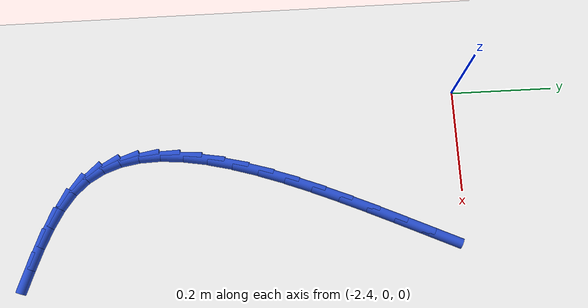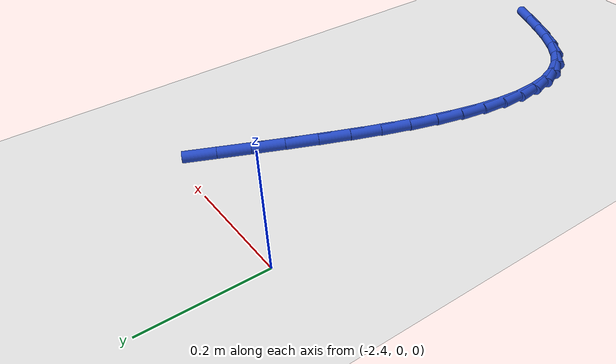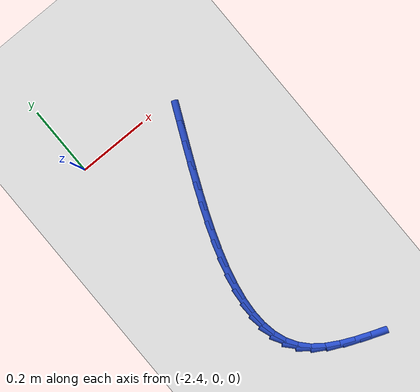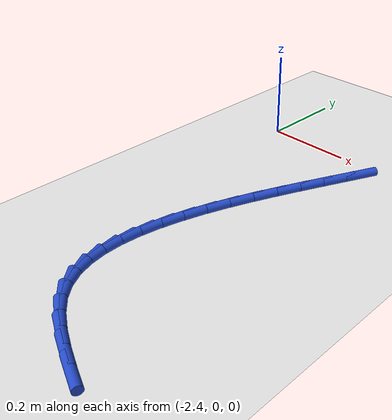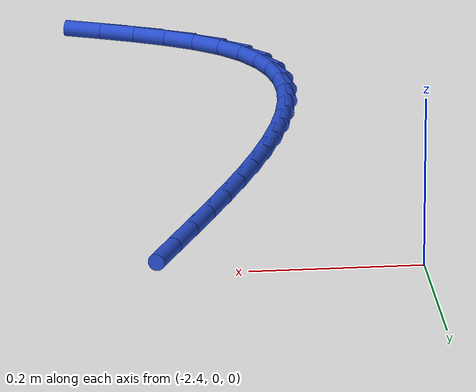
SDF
<sdf version="1.6">
 <world name="default">
  <model name="ground_plane">
   <static>1</static>
   <link name="link">
    <collision name="collision">
     <geometry><plane><normal>0 0 1</normal><size>100 100</size></plane></geometry>
     <surface><friction><ode><mu>100</mu><mu2>50</mu2></ode></friction></surface>
    </collision>
    <visual name="visual">
     <cast_shadows>0</cast_shadows>
     <geometry><plane><normal>0 0 1</normal><size>100 100</size></plane></geometry>
     <material>
      <script><uri>file://media/materials/scripts/gazebo.material</uri><name>Gazebo/WhiteGlow</name></script>
     </material>
    </visual>
   </link>
  </model>
  <model name="line">
   <link name="link_78">
    <pose>-2.1132337946085613 -0.04849310016206671 0.01 0 1.57 1.1350718296241256</pose>
    <collision name="collision">
     <geometry><cylinder><radius>0.01</radius><length>0.08</length></cylinder></geometry>
    </collision>
    <visual name="visual">
     <material>
      <script><name>Gazebo/Blue</name><uri>file://media/materials/scripts/gazebo.material</uri></script>
     </material>
     <geometry><cylinder><radius>0.01</radius><length>0.08</length></cylinder></geometry>
    </visual>
   </link>
   <link name="link_79">
    <pose>-2.136836326882205 -0.09918932072881387 0.01 0 1.57 1.137026792418814</pose>
    <collision name="collision">
     <geometry><cylinder><radius>0.01</radius><length>0.08</length></cylinder></geometry>
    </collision>
    <visual name="visual">
     <material>
      <script><name>Gazebo/Blue</name><uri>file://media/materials/scripts/gazebo.material</uri></script>
     </material>
     <geometry><cylinder><radius>0.01</radius><length>0.08</length></cylinder></geometry>
    </visual>
   </link>
   <link name="link_80">
    <pose>-2.1605311546759363 -0.15034491410550677 0.01 0 1.57 1.1443742118577038</pose>
    <collision name="collision">
     <geometry><cylinder><radius>0.01</radius><length>0.08</length></cylinder></geometry>
    </collision>
    <visual name="visual">
     <material>
      <script><name>Gazebo/Blue</name><uri>file://media/materials/scripts/gazebo.material</uri></script>
     </material>
     <geometry><cylinder><radius>0.01</radius><length>0.08</length></cylinder></geometry>
    </visual>
   </link>
   <link name="link_81">
    <pose>-2.1838477171649795 -0.20166933030969936 0.01 0 1.57 1.157295317608023</pose>
    <collision name="collision">
     <geometry><cylinder><radius>0.01</radius><length>0.08</length></cylinder></geometry>
    </collision>
    <visual name="visual">
     <material>
      <script><name>Gazebo/Blue</name><uri>file://media/materials/scripts/gazebo.material</uri></script>
     </material>
     <geometry><cylinder><radius>0.01</radius><length>0.08</length></cylinder></geometry>
    </visual>
   </link>
   <link name="link_82">
    <pose>-2.206315453524558 -0.2528720193589465 0.01 0 1.57 1.1762455039049775</pose>
    <collision name="collision">
     <geometry><cylinder><radius>0.01</radius><length>0.08</length></cylinder></geometry>
    </collision>
    <visual name="visual">
     <material>
      <script><name>Gazebo/Blue</name><uri>file://media/materials/scripts/gazebo.material</uri></script>
     </material>
     <geometry><cylinder><radius>0.01</radius><length>0.08</length></cylinder></geometry>
    </visual>
   </link>
   <link name="link_83">
    <pose>-2.227463802929895 -0.3036624312708003 0.01 0 1.57 1.2019895927054551</pose>
    <collision name="collision">
     <geometry><cylinder><radius>0.01</radius><length>0.08</length></cylinder></geometry>
    </collision>
    <visual name="visual">
     <material>
      <script><name>Gazebo/Blue</name><uri>file://media/materials/scripts/gazebo.material</uri></script>
     </material>
     <geometry><cylinder><radius>0.01</radius><length>0.08</length></cylinder></geometry>
    </visual>
   </link>
   <link name="link_84">
    <pose>-2.2468222045562163 -0.35375001606281564 0.01 0 1.57 1.2356662053786385</pose>
    <collision name="collision">
     <geometry><cylinder><radius>0.01</radius><length>0.08</length></cylinder></geometry>
    </collision>
    <visual name="visual">
     <material>
      <script><name>Gazebo/Blue</name><uri>file://media/materials/scripts/gazebo.material</uri></script>
     </material>
     <geometry><cylinder><radius>0.01</radius><length>0.08</length></cylinder></geometry>
    </visual>
   </link>
   <link name="link_85">
    <pose>-2.263920097578745 -0.40284422375254664 0.01 0 1.57 1.2788840591480641</pose>
    <collision name="collision">
     <geometry><cylinder><radius>0.01</radius><length>0.08</length></cylinder></geometry>
    </collision>
    <visual name="visual">
     <material>
      <script><name>Gazebo/Blue</name><uri>file://media/materials/scripts/gazebo.material</uri></script>
     </material>
     <geometry><cylinder><radius>0.01</radius><length>0.08</length></cylinder></geometry>
    </visual>
   </link>
   <link name="link_86">
    <pose>-2.278286921172704 -0.45065450435754706 0.01 0 1.57 1.3338489170531873</pose>
    <collision name="collision">
     <geometry><cylinder><radius>0.01</radius><length>0.08</length></cylinder></geometry>
    </collision>
    <visual name="visual">
     <material>
      <script><name>Gazebo/Blue</name><uri>file://media/materials/scripts/gazebo.material</uri></script>
     </material>
     <geometry><cylinder><radius>0.01</radius><length>0.08</length></cylinder></geometry>
    </visual>
   </link>
   <link name="link_87">
    <pose>-2.2894521145133195 -0.4968903078953719 0.01 0 1.57 1.403502240920932</pose>
    <collision name="collision">
     <geometry><cylinder><radius>0.01</radius><length>0.08</length></cylinder></geometry>
    </collision>
    <visual name="visual">
     <material>
      <script><name>Gazebo/Blue</name><uri>file://media/materials/scripts/gazebo.material</uri></script>
     </material>
     <geometry><cylinder><radius>0.01</radius><length>0.08</length></cylinder></geometry>
    </visual>
   </link>
   <link name="link_88">
    <pose>-2.296945116775814 -0.5412610843835732 0.01 0 1.57 1.4916010762462961</pose>
    <collision name="collision">
     <geometry><cylinder><radius>0.01</radius><length>0.08</length></cylinder></geometry>
    </collision>
    <visual name="visual">
     <material>
      <script><name>Gazebo/Blue</name><uri>file://media/materials/scripts/gazebo.material</uri></script>
     </material>
     <geometry><cylinder><radius>0.01</radius><length>0.08</length></cylinder></geometry>
    </visual>
   </link>
   <link name="link_89">
    <pose>-2.3002953671354116 -0.5834762838397061 0.01 0 1.57 -1.5390470838027503</pose>
    <collision name="collision">
     <geometry><cylinder><radius>0.01</radius><length>0.08</length></cylinder></geometry>
    </collision>
    <visual name="visual">
     <material>
      <script><name>Gazebo/Blue</name><uri>file://media/materials/scripts/gazebo.material</uri></script>
     </material>
     <geometry><cylinder><radius>0.01</radius><length>0.08</length></cylinder></geometry>
    </visual>
   </link>
   <link name="link_90">
    <pose>-2.2990323047673367 -0.6232453562813242 0.01 0 1.57 -1.4010567388194102</pose>
    <collision name="collision">
     <geometry><cylinder><radius>0.01</radius><length>0.08</length></cylinder></geometry>
    </collision>
    <visual name="visual">
     <material>
      <script><name>Gazebo/Blue</name><uri>file://media/materials/scripts/gazebo.material</uri></script>
     </material>
     <geometry><cylinder><radius>0.01</radius><length>0.08</length></cylinder></geometry>
    </visual>
   </link>
   <link name="link_91">
    <pose>-2.292685368846813 -0.6602777517259817 0.01 0 1.57 -1.2341329996178074</pose>
    <collision name="collision">
     <geometry><cylinder><radius>0.01</radius><length>0.08</length></cylinder></geometry>
    </collision>
    <visual name="visual">
     <material>
      <script><name>Gazebo/Blue</name><uri>file://media/materials/scripts/gazebo.material</uri></script>
     </material>
     <geometry><cylinder><radius>0.01</radius><length>0.08</length></cylinder></geometry>
    </visual>
   </link>
   <link name="link_92">
    <pose>-2.2807839985490648 -0.6942829201912333 0.01 0 1.57 -1.0421048540330218</pose>
    <collision name="collision">
     <geometry><cylinder><radius>0.01</radius><length>0.08</length></cylinder></geometry>
    </collision>
    <visual name="visual">
     <material>
      <script><name>Gazebo/Blue</name><uri>file://media/materials/scripts/gazebo.material</uri></script>
     </material>
     <geometry><cylinder><radius>0.01</radius><length>0.08</length></cylinder></geometry>
    </visual>
   </link>
   <link name="link_93">
    <pose>-2.262857633049316 -0.7249703116946313 0.01 0 1.57 -0.8371760394978309</pose>
    <collision name="collision">
     <geometry><cylinder><radius>0.01</radius><length>0.08</length></cylinder></geometry>
    </collision>
    <visual name="visual">
     <material>
      <script><name>Gazebo/Blue</name><uri>file://media/materials/scripts/gazebo.material</uri></script>
     </material>
     <geometry><cylinder><radius>0.01</radius><length>0.08</length></cylinder></geometry>
    </visual>
   </link>
   <link name="link_94">
    <pose>-2.2384426538342095 -0.7520541771854679 0.01 0 1.57 -0.6528817366957269</pose>
    <collision name="collision">
     <geometry><cylinder><radius>0.01</radius><length>0.08</length></cylinder></geometry>
    </collision>
    <visual name="visual">
     <material>
      <script><name>Gazebo/Blue</name><uri>file://media/materials/scripts/gazebo.material</uri></script>
     </material>
     <geometry><cylinder><radius>0.01</radius><length>0.08</length></cylinder></geometry>
    </visual>
   </link>
   <link name="link_95">
    <pose>-2.2076205508198092 -0.7756257354845395 0.01 0 1.57 -0.5211400893542413</pose>
    <collision name="collision">
     <geometry><cylinder><radius>0.01</radius><length>0.08</length></cylinder></geometry>
    </collision>
    <visual name="visual">
     <material>
      <script><name>Gazebo/Blue</name><uri>file://media/materials/scripts/gazebo.material</uri></script>
     </material>
     <geometry><cylinder><radius>0.01</radius><length>0.08</length></cylinder></geometry>
    </visual>
   </link>
   <link name="link_96">
    <pose>-2.1714013515798745 -0.7964183324566281 0.01 0 1.57 -0.43464366774029406</pose>
    <collision name="collision">
     <geometry><cylinder><radius>0.01</radius><length>0.08</length></cylinder></geometry>
    </collision>
    <visual name="visual">
     <material>
      <script><name>Gazebo/Blue</name><uri>file://media/materials/scripts/gazebo.material</uri></script>
     </material>
     <geometry><cylinder><radius>0.01</radius><length>0.08</length></cylinder></geometry>
    </visual>
   </link>
   <link name="link_97">
    <pose>-2.1308855995491047 -0.8152279099008156 0.01 0 1.57 -0.383220970406036</pose>
    <collision name="collision">
     <geometry><cylinder><radius>0.01</radius><length>0.08</length></cylinder></geometry>
    </collision>
    <visual name="visual">
     <material>
      <script><name>Gazebo/Blue</name><uri>file://media/materials/scripts/gazebo.material</uri></script>
     </material>
     <geometry><cylinder><radius>0.01</radius><length>0.08</length></cylinder></geometry>
    </visual>
   </link>
   <link name="link_98">
    <pose>-2.0871738381621965 -0.8328504096161842 0.01 0 1.57 -0.359797158968006</pose>
    <collision name="collision">
     <geometry><cylinder><radius>0.01</radius><length>0.08</length></cylinder></geometry>
    </collision>
    <visual name="visual">
     <material>
      <script><name>Gazebo/Blue</name><uri>file://media/materials/scripts/gazebo.material</uri></script>
     </material>
     <geometry><cylinder><radius>0.01</radius><length>0.08</length></cylinder></geometry>
    </visual>
   </link>
  </model>
 </world>
</sdf>
